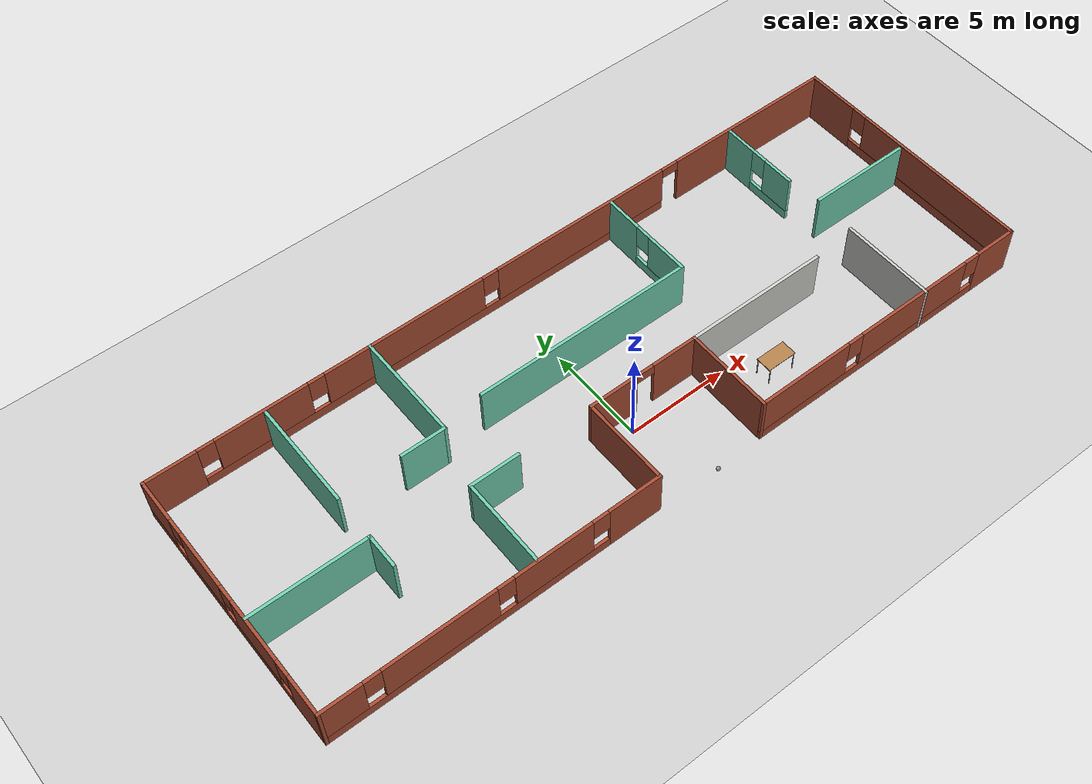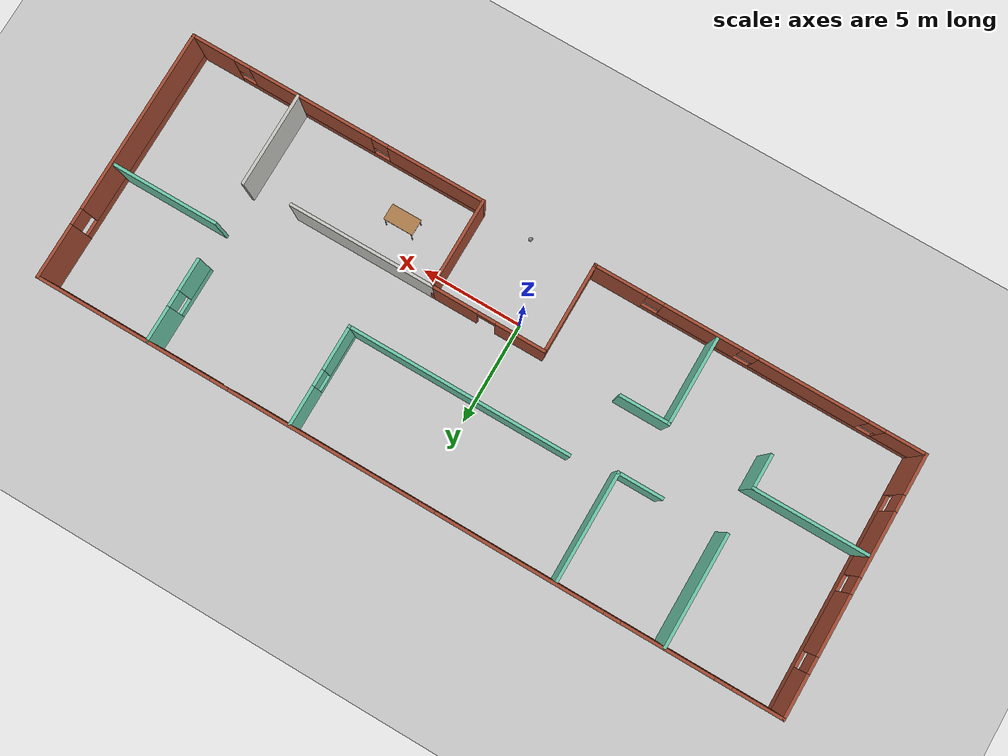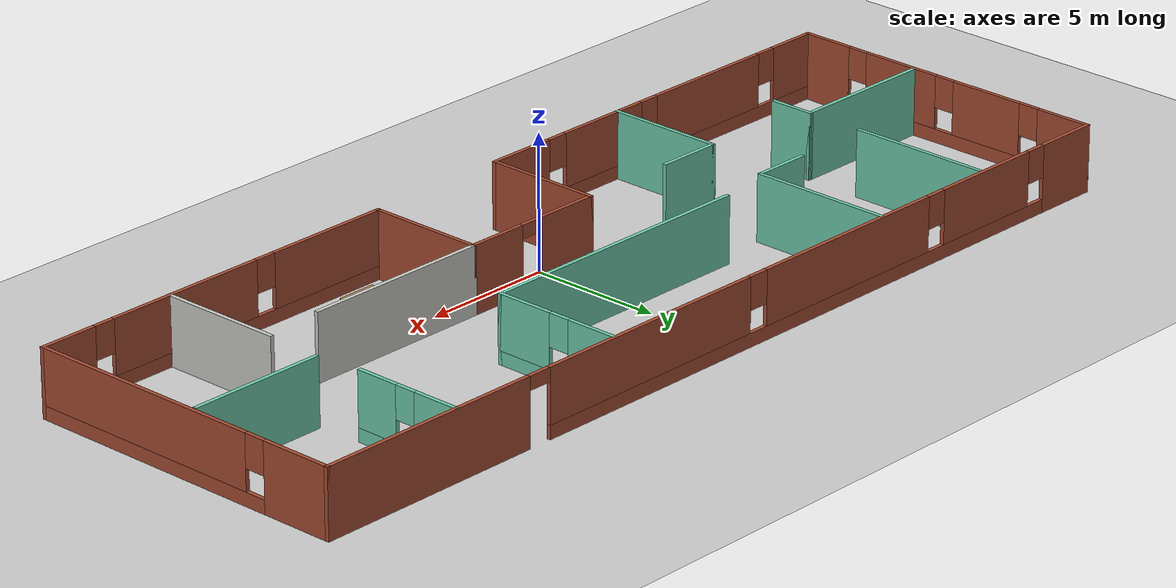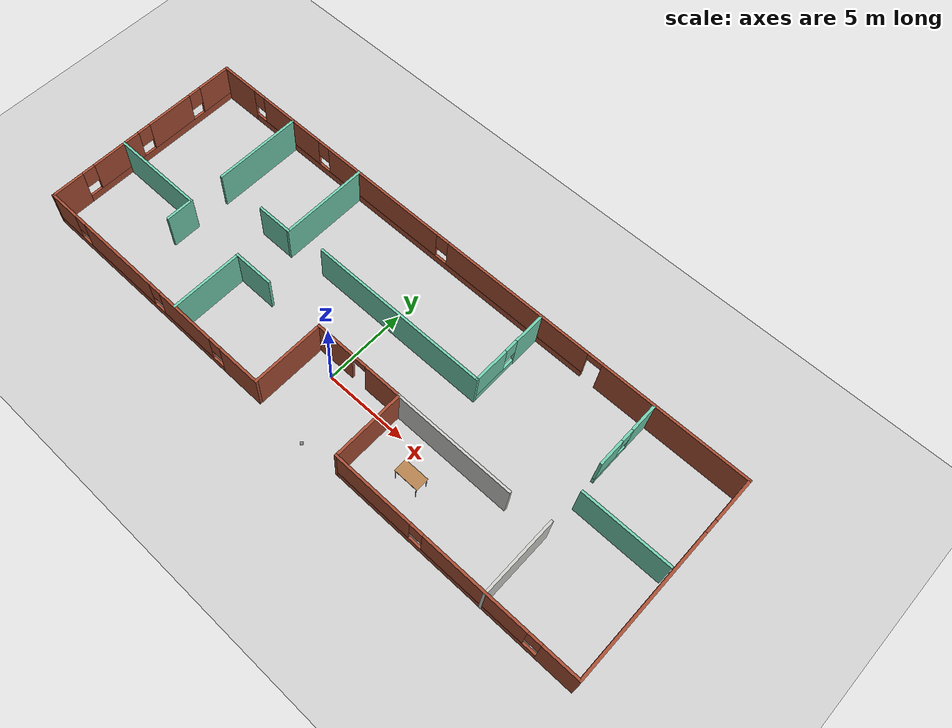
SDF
<sdf version="1.6">
 <world name="default">
  <model name="ground_plane">
   <static>1</static>
   <link name="link">
    <collision name="collision">
     <geometry><plane><normal>0 0 1</normal><size>100 100</size></plane></geometry>
     <surface><friction><ode><mu>100</mu><mu2>50</mu2></ode></friction></surface>
    </collision>
    <visual name="visual">
     <cast_shadows>0</cast_shadows>
     <geometry><plane><normal>0 0 1</normal><size>100 100</size></plane></geometry>
     <material>
      <script><uri>file://media/materials/scripts/gazebo.material</uri><name>Gazebo/Grey</name></script>
     </material>
    </visual>
   </link>
  </model>
  <model name="office_2">
   <pose>0.5777 2.7439 0 0 -0 0</pose>
   <link name="Wall_27">
    <pose>18.275 0.006607 0 0 0 -1.5708</pose>
    <visual name="Wall_27_Visual_0">
     <pose>-4.99868 0 1.25 0 -0 0</pose>
     <geometry><box><size>2.75264 0.15 2.5</size></box></geometry>
     <material>
      <script><uri>file://media/materials/scripts/gazebo.material</uri><name>Gazebo/Bricks</name></script>
      <ambient>1 1 1 1</ambient>
     </material>
     <meta><layer>0</layer></meta>
    </visual>
    <collision name="Wall_27_Collision_0">
     <geometry><box><size>2.75264 0.15 2.5</size></box></geometry>
     <pose>-4.99868 0 1.25 0 -0 0</pose>
    </collision>
    <visual name="Wall_27_Visual_1">
     <pose>1.37632 0 0.25 0 -0 0</pose>
     <geometry><box><size>9.99736 0.15 0.5</size></box></geometry>
     <material>
      <script><uri>file://media/materials/scripts/gazebo.material</uri><name>Gazebo/Bricks</name></script>
      <ambient>1 1 1 1</ambient>
     </material>
     <meta><layer>0</layer></meta>
    </visual>
    <collision name="Wall_27_Collision_1">
     <geometry><box><size>9.99736 0.15 0.5</size></box></geometry>
     <pose>1.37632 0 0.25 0 -0 0</pose>
    </collision>
    <visual name="Wall_27_Visual_2">
     <pose>1.77632 0 1.5 0 -0 0</pose>
     <geometry><box><size>9.19736 0.15 2</size></box></geometry>
     <material>
      <script><uri>file://media/materials/scripts/gazebo.material</uri><name>Gazebo/Bricks</name></script>
      <ambient>1 1 1 1</ambient>
     </material>
     <meta><layer>0</layer></meta>
    </visual>
    <collision name="Wall_27_Collision_2">
     <geometry><box><size>9.19736 0.15 2</size></box></geometry>
     <pose>1.77632 0 1.5 0 -0 0</pose>
    </collision>
    <visual name="Wall_27_Visual_3">
     <pose>-3.22236 0 1.9 0 -0 0</pose>
     <geometry><box><size>0.8 0.15 1.2</size></box></geometry>
     <material>
      <script><uri>file://media/materials/scripts/gazebo.material</uri><name>Gazebo/Bricks</name></script>
      <ambient>1 1 1 1</ambient>
     </material>
     <meta><layer>0</layer></meta>
    </visual>
    <collision name="Wall_27_Collision_3">
     <geometry><box><size>0.8 0.15 1.2</size></box></geometry>
     <pose>-3.22236 0 1.9 0 -0 0</pose>
    </collision>
   </link>
   <link name="Wall_28">
    <pose>10.85 -6.29339 0 0 -0 3.14159</pose>
    <visual name="Wall_28_Visual_0">
     <pose>-6.39219 0 1.25 0 -0 0</pose>
     <geometry><box><size>2.21562 0.15 2.5</size></box></geometry>
     <material>
      <script><uri>file://media/materials/scripts/gazebo.material</uri><name>Gazebo/Bricks</name></script>
      <ambient>1 1 1 1</ambient>
     </material>
     <meta><layer>0</layer></meta>
    </visual>
    <collision name="Wall_28_Collision_0">
     <geometry><box><size>2.21562 0.15 2.5</size></box></geometry>
     <pose>-6.39219 0 1.25 0 -0 0</pose>
    </collision>
    <visual name="Wall_28_Visual_1">
     <pose>1.10781 0 0.25 0 -0 0</pose>
     <geometry><box><size>12.7844 0.15 0.5</size></box></geometry>
     <material>
      <script><uri>file://media/materials/scripts/gazebo.material</uri><name>Gazebo/Bricks</name></script>
      <ambient>1 1 1 1</ambient>
     </material>
     <meta><layer>0</layer></meta>
    </visual>
    <collision name="Wall_28_Collision_1">
     <geometry><box><size>12.7844 0.15 0.5</size></box></geometry>
     <pose>1.10781 0 0.25 0 -0 0</pose>
    </collision>
    <visual name="Wall_28_Visual_2">
     <pose>-1.34653 0 1.5 0 -0 0</pose>
     <geometry><box><size>6.27571 0.15 2</size></box></geometry>
     <material>
      <script><uri>file://media/materials/scripts/gazebo.material</uri><name>Gazebo/Bricks</name></script>
      <ambient>1 1 1 1</ambient>
     </material>
     <meta><layer>0</layer></meta>
    </visual>
    <collision name="Wall_28_Collision_2">
     <geometry><box><size>6.27571 0.15 2</size></box></geometry>
     <pose>-1.34653 0 1.5 0 -0 0</pose>
    </collision>
    <visual name="Wall_28_Visual_3">
     <pose>5.04566 0 1.5 0 -0 0</pose>
     <geometry><box><size>4.90868 0.15 2</size></box></geometry>
     <material>
      <script><uri>file://media/materials/scripts/gazebo.material</uri><name>Gazebo/Bricks</name></script>
      <ambient>1 1 1 1</ambient>
     </material>
     <meta><layer>0</layer></meta>
    </visual>
    <collision name="Wall_28_Collision_3">
     <geometry><box><size>4.90868 0.15 2</size></box></geometry>
     <pose>5.04566 0 1.5 0 -0 0</pose>
    </collision>
    <visual name="Wall_28_Visual_4">
     <pose>-4.88438 0 1.9 0 -0 0</pose>
     <geometry><box><size>0.8 0.15 1.2</size></box></geometry>
     <material>
      <script><uri>file://media/materials/scripts/gazebo.material</uri><name>Gazebo/Bricks</name></script>
      <ambient>1 1 1 1</ambient>
     </material>
     <meta><layer>0</layer></meta>
    </visual>
    <collision name="Wall_28_Collision_4">
     <geometry><box><size>0.8 0.15 1.2</size></box></geometry>
     <pose>-4.88438 0 1.9 0 -0 0</pose>
    </collision>
    <visual name="Wall_28_Visual_5">
     <pose>2.19132 0 1.9 0 -0 0</pose>
     <geometry><box><size>0.8 0.15 1.2</size></box></geometry>
     <material>
      <script><uri>file://media/materials/scripts/gazebo.material</uri><name>Gazebo/Bricks</name></script>
      <ambient>1 1 1 1</ambient>
     </material>
     <meta><layer>0</layer></meta>
    </visual>
    <collision name="Wall_28_Collision_5">
     <geometry><box><size>0.8 0.15 1.2</size></box></geometry>
     <pose>2.19132 0 1.9 0 -0 0</pose>
    </collision>
   </link>
   <link name="Wall_29">
    <collision name="Wall_29_Collision">
     <geometry><box><size>4.5 0.15 2.5</size></box></geometry>
     <pose>0 0 1.25 0 -0 0</pose>
    </collision>
    <visual name="Wall_29_Visual">
     <pose>0 0 1.25 0 -0 0</pose>
     <geometry><box><size>4.5 0.15 2.5</size></box></geometry>
     <material>
      <script><uri>file://media/materials/scripts/gazebo.material</uri><name>Gazebo/Bricks</name></script>
      <ambient>1 1 1 1</ambient>
     </material>
     <meta><layer>0</layer></meta>
    </visual>
    <pose>3.425 -4.11839 0 0 -0 1.5708</pose>
   </link>
   <link name="Wall_30">
    <pose>0.625 -1.94339 0 0 -0 3.14159</pose>
    <visual name="Wall_30_Visual_0">
     <pose>-1.6967 0 1.25 0 -0 0</pose>
     <geometry><box><size>2.3566 0.15 2.5</size></box></geometry>
     <material>
      <script><uri>file://media/materials/scripts/gazebo.material</uri><name>Gazebo/Bricks</name></script>
      <ambient>1 1 1 1</ambient>
     </material>
     <meta><layer>0</layer></meta>
    </visual>
    <collision name="Wall_30_Collision_0">
     <geometry><box><size>2.3566 0.15 2.5</size></box></geometry>
     <pose>-1.6967 0 1.25 0 -0 0</pose>
    </collision>
    <visual name="Wall_30_Visual_1">
     <pose>1.6283 0 1.25 0 -0 0</pose>
     <geometry><box><size>2.4934 0.15 2.5</size></box></geometry>
     <material>
      <script><uri>file://media/materials/scripts/gazebo.material</uri><name>Gazebo/Bricks</name></script>
      <ambient>1 1 1 1</ambient>
     </material>
     <meta><layer>0</layer></meta>
    </visual>
    <collision name="Wall_30_Collision_1">
     <geometry><box><size>2.4934 0.15 2.5</size></box></geometry>
     <pose>1.6283 0 1.25 0 -0 0</pose>
    </collision>
    <visual name="Wall_30_Visual_2">
     <pose>-0.068397 0 2.25 0 -0 0</pose>
     <geometry><box><size>0.9 0.15 0.5</size></box></geometry>
     <material>
      <script><uri>file://media/materials/scripts/gazebo.material</uri><name>Gazebo/Bricks</name></script>
      <ambient>1 1 1 1</ambient>
     </material>
     <meta><layer>0</layer></meta>
    </visual>
    <collision name="Wall_30_Collision_2">
     <geometry><box><size>0.9 0.15 0.5</size></box></geometry>
     <pose>-0.068397 0 2.25 0 -0 0</pose>
    </collision>
   </link>
   <link name="Wall_31">
    <collision name="Wall_31_Collision">
     <geometry><box><size>4.5 0.15 2.5</size></box></geometry>
     <pose>0 0 1.25 0 -0 0</pose>
    </collision>
    <visual name="Wall_31_Visual">
     <pose>0 0 1.25 0 -0 0</pose>
     <geometry><box><size>4.5 0.15 2.5</size></box></geometry>
     <material>
      <script><uri>file://media/materials/scripts/gazebo.material</uri><name>Gazebo/Bricks</name></script>
      <ambient>1 1 1 1</ambient>
     </material>
     <meta><layer>0</layer></meta>
    </visual>
    <pose>-2.175 -4.11839 0 0 0 -1.5708</pose>
   </link>
   <link name="Wall_32">
    <pose>-10.225 -6.29339 0 0 -0 3.14159</pose>
    <visual name="Wall_32_Visual_0">
     <pose>-6.78571 0 1.25 0 -0 0</pose>
     <geometry><box><size>2.67859 0.15 2.5</size></box></geometry>
     <material>
      <script><uri>file://media/materials/scripts/gazebo.material</uri><name>Gazebo/Bricks</name></script>
      <ambient>1 1 1 1</ambient>
     </material>
     <meta><layer>0</layer></meta>
    </visual>
    <collision name="Wall_32_Collision_0">
     <geometry><box><size>2.67859 0.15 2.5</size></box></geometry>
     <pose>-6.78571 0 1.25 0 -0 0</pose>
    </collision>
    <visual name="Wall_32_Visual_1">
     <pose>1.33929 0 0.25 0 -0 0</pose>
     <geometry><box><size>13.5714 0.15 0.5</size></box></geometry>
     <material>
      <script><uri>file://media/materials/scripts/gazebo.material</uri><name>Gazebo/Bricks</name></script>
      <ambient>1 1 1 1</ambient>
     </material>
     <meta><layer>0</layer></meta>
    </visual>
    <collision name="Wall_32_Collision_1">
     <geometry><box><size>13.5714 0.15 0.5</size></box></geometry>
     <pose>1.33929 0 0.25 0 -0 0</pose>
    </collision>
    <visual name="Wall_32_Visual_2">
     <pose>-2.72912 0 1.5 0 -0 0</pose>
     <geometry><box><size>3.83459 0.15 2</size></box></geometry>
     <material>
      <script><uri>file://media/materials/scripts/gazebo.material</uri><name>Gazebo/Bricks</name></script>
      <ambient>1 1 1 1</ambient>
     </material>
     <meta><layer>0</layer></meta>
    </visual>
    <collision name="Wall_32_Collision_2">
     <geometry><box><size>3.83459 0.15 2</size></box></geometry>
     <pose>-2.72912 0 1.5 0 -0 0</pose>
    </collision>
    <visual name="Wall_32_Visual_3">
     <pose>2.64842 0 1.5 0 -0 0</pose>
     <geometry><box><size>5.32049 0.15 2</size></box></geometry>
     <material>
      <script><uri>file://media/materials/scripts/gazebo.material</uri><name>Gazebo/Bricks</name></script>
      <ambient>1 1 1 1</ambient>
     </material>
     <meta><layer>0</layer></meta>
    </visual>
    <collision name="Wall_32_Collision_3">
     <geometry><box><size>5.32049 0.15 2</size></box></geometry>
     <pose>2.64842 0 1.5 0 -0 0</pose>
    </collision>
    <visual name="Wall_32_Visual_4">
     <pose>7.11683 0 1.5 0 -0 0</pose>
     <geometry><box><size>2.01634 0.15 2</size></box></geometry>
     <material>
      <script><uri>file://media/materials/scripts/gazebo.material</uri><name>Gazebo/Bricks</name></script>
      <ambient>1 1 1 1</ambient>
     </material>
     <meta><layer>0</layer></meta>
    </visual>
    <collision name="Wall_32_Collision_4">
     <geometry><box><size>2.01634 0.15 2</size></box></geometry>
     <pose>7.11683 0 1.5 0 -0 0</pose>
    </collision>
    <visual name="Wall_32_Visual_5">
     <pose>-5.04641 0 1.9 0 -0 0</pose>
     <geometry><box><size>0.8 0.15 1.2</size></box></geometry>
     <material>
      <script><uri>file://media/materials/scripts/gazebo.material</uri><name>Gazebo/Bricks</name></script>
      <ambient>1 1 1 1</ambient>
     </material>
     <meta><layer>0</layer></meta>
    </visual>
    <collision name="Wall_32_Collision_5">
     <geometry><box><size>0.8 0.15 1.2</size></box></geometry>
     <pose>-5.04641 0 1.9 0 -0 0</pose>
    </collision>
    <visual name="Wall_32_Visual_6">
     <pose>-0.411825 0 1.9 0 -0 0</pose>
     <geometry><box><size>0.8 0.15 1.2</size></box></geometry>
     <material>
      <script><uri>file://media/materials/scripts/gazebo.material</uri><name>Gazebo/Bricks</name></script>
      <ambient>1 1 1 1</ambient>
     </material>
     <meta><layer>0</layer></meta>
    </visual>
    <collision name="Wall_32_Collision_6">
     <geometry><box><size>0.8 0.15 1.2</size></box></geometry>
     <pose>-0.411825 0 1.9 0 -0 0</pose>
    </collision>
    <visual name="Wall_32_Visual_7">
     <pose>5.70866 0 1.9 0 -0 0</pose>
     <geometry><box><size>0.8 0.15 1.2</size></box></geometry>
     <material>
      <script><uri>file://media/materials/scripts/gazebo.material</uri><name>Gazebo/Bricks</name></script>
      <ambient>1 1 1 1</ambient>
     </material>
     <meta><layer>0</layer></meta>
    </visual>
    <collision name="Wall_32_Collision_7">
     <geometry><box><size>0.8 0.15 1.2</size></box></geometry>
     <pose>5.70866 0 1.9 0 -0 0</pose>
    </collision>
   </link>
   <link name="Wall_33">
    <pose>-18.275 0.006607 0 0 -0 1.5708</pose>
    <visual name="Wall_33_Visual_0">
     <pose>-5.34955 0 1.25 0 -0 0</pose>
     <geometry><box><size>2.0509 0.15 2.5</size></box></geometry>
     <material>
      <script><uri>file://media/materials/scripts/gazebo.material</uri><name>Gazebo/Bricks</name></script>
      <ambient>1 1 1 1</ambient>
     </material>
     <meta><layer>0</layer></meta>
    </visual>
    <collision name="Wall_33_Collision_0">
     <geometry><box><size>2.0509 0.15 2.5</size></box></geometry>
     <pose>-5.34955 0 1.25 0 -0 0</pose>
    </collision>
    <visual name="Wall_33_Visual_1">
     <pose>1.02545 0 0.25 0 -0 0</pose>
     <geometry><box><size>10.6991 0.15 0.5</size></box></geometry>
     <material>
      <script><uri>file://media/materials/scripts/gazebo.material</uri><name>Gazebo/Bricks</name></script>
      <ambient>1 1 1 1</ambient>
     </material>
     <meta><layer>0</layer></meta>
    </visual>
    <collision name="Wall_33_Collision_1">
     <geometry><box><size>10.6991 0.15 0.5</size></box></geometry>
     <pose>1.02545 0 0.25 0 -0 0</pose>
    </collision>
    <visual name="Wall_33_Visual_2">
     <pose>-1.9429 0 1.5 0 -0 0</pose>
     <geometry><box><size>3.1624 0.15 2</size></box></geometry>
     <material>
      <script><uri>file://media/materials/scripts/gazebo.material</uri><name>Gazebo/Bricks</name></script>
      <ambient>1 1 1 1</ambient>
     </material>
     <meta><layer>0</layer></meta>
    </visual>
    <collision name="Wall_33_Collision_2">
     <geometry><box><size>3.1624 0.15 2</size></box></geometry>
     <pose>-1.9429 0 1.5 0 -0 0</pose>
    </collision>
    <visual name="Wall_33_Visual_3">
     <pose>1.91336 0 1.5 0 -0 0</pose>
     <geometry><box><size>2.95012 0.15 2</size></box></geometry>
     <material>
      <script><uri>file://media/materials/scripts/gazebo.material</uri><name>Gazebo/Bricks</name></script>
      <ambient>1 1 1 1</ambient>
     </material>
     <meta><layer>0</layer></meta>
    </visual>
    <collision name="Wall_33_Collision_3">
     <geometry><box><size>2.95012 0.15 2</size></box></geometry>
     <pose>1.91336 0 1.5 0 -0 0</pose>
    </collision>
    <visual name="Wall_33_Visual_4">
     <pose>5.28171 0 1.5 0 -0 0</pose>
     <geometry><box><size>2.18658 0.15 2</size></box></geometry>
     <material>
      <script><uri>file://media/materials/scripts/gazebo.material</uri><name>Gazebo/Bricks</name></script>
      <ambient>1 1 1 1</ambient>
     </material>
     <meta><layer>0</layer></meta>
    </visual>
    <collision name="Wall_33_Collision_4">
     <geometry><box><size>2.18658 0.15 2</size></box></geometry>
     <pose>5.28171 0 1.5 0 -0 0</pose>
    </collision>
    <visual name="Wall_33_Visual_5">
     <pose>-3.9241 0 1.9 0 -0 0</pose>
     <geometry><box><size>0.8 0.15 1.2</size></box></geometry>
     <material>
      <script><uri>file://media/materials/scripts/gazebo.material</uri><name>Gazebo/Bricks</name></script>
      <ambient>1 1 1 1</ambient>
     </material>
     <meta><layer>0</layer></meta>
    </visual>
    <collision name="Wall_33_Collision_5">
     <geometry><box><size>0.8 0.15 1.2</size></box></geometry>
     <pose>-3.9241 0 1.9 0 -0 0</pose>
    </collision>
    <visual name="Wall_33_Visual_6">
     <pose>0.038294 0 1.9 0 -0 0</pose>
     <geometry><box><size>0.8 0.15 1.2</size></box></geometry>
     <material>
      <script><uri>file://media/materials/scripts/gazebo.material</uri><name>Gazebo/Bricks</name></script>
      <ambient>1 1 1 1</ambient>
     </material>
     <meta><layer>0</layer></meta>
    </visual>
    <collision name="Wall_33_Collision_6">
     <geometry><box><size>0.8 0.15 1.2</size></box></geometry>
     <pose>0.038294 0 1.9 0 -0 0</pose>
    </collision>
    <visual name="Wall_33_Visual_7">
     <pose>3.78842 0 1.9 0 -0 0</pose>
     <geometry><box><size>0.8 0.15 1.2</size></box></geometry>
     <material>
      <script><uri>file://media/materials/scripts/gazebo.material</uri><name>Gazebo/Bricks</name></script>
      <ambient>1 1 1 1</ambient>
     </material>
     <meta><layer>0</layer></meta>
    </visual>
    <collision name="Wall_33_Collision_7">
     <geometry><box><size>0.8 0.15 1.2</size></box></geometry>
     <pose>3.78842 0 1.9 0 -0 0</pose>
    </collision>
   </link>
   <link name="Wall_35">
    <pose>0 6.30661 0 0 -0 0</pose>
    <visual name="Wall_35_Visual_0">
     <pose>-17.0942 0 1.25 0 -0 0</pose>
     <geometry><box><size>2.51164 0.15 2.5</size></box></geometry>
     <material>
      <script><uri>file://media/materials/scripts/gazebo.material</uri><name>Gazebo/Bricks</name></script>
      <ambient>1 1 1 1</ambient>
     </material>
     <meta><layer>0</layer></meta>
    </visual>
    <collision name="Wall_35_Collision_0">
     <geometry><box><size>2.51164 0.15 2.5</size></box></geometry>
     <pose>-17.0942 0 1.25 0 -0 0</pose>
    </collision>
    <visual name="Wall_35_Visual_1">
     <pose>13.9356 0 1.25 0 -0 0</pose>
     <geometry><box><size>8.82887 0.15 2.5</size></box></geometry>
     <material>
      <script><uri>file://media/materials/scripts/gazebo.material</uri><name>Gazebo/Bricks</name></script>
      <ambient>1 1 1 1</ambient>
     </material>
     <meta><layer>0</layer></meta>
    </visual>
    <collision name="Wall_35_Collision_1">
     <geometry><box><size>8.82887 0.15 2.5</size></box></geometry>
     <pose>13.9356 0 1.25 0 -0 0</pose>
    </collision>
    <visual name="Wall_35_Visual_2">
     <pose>-3.60861 0 0.25 0 -0 0</pose>
     <geometry><box><size>24.4595 0.15 0.5</size></box></geometry>
     <material>
      <script><uri>file://media/materials/scripts/gazebo.material</uri><name>Gazebo/Bricks</name></script>
      <ambient>1 1 1 1</ambient>
     </material>
     <meta><layer>0</layer></meta>
    </visual>
    <collision name="Wall_35_Collision_2">
     <geometry><box><size>24.4595 0.15 0.5</size></box></geometry>
     <pose>-3.60861 0 0.25 0 -0 0</pose>
    </collision>
    <visual name="Wall_35_Visual_3">
     <pose>-12.8027 0 1.5 0 -0 0</pose>
     <geometry><box><size>4.4714 0.15 2</size></box></geometry>
     <material>
      <script><uri>file://media/materials/scripts/gazebo.material</uri><name>Gazebo/Bricks</name></script>
      <ambient>1 1 1 1</ambient>
     </material>
     <meta><layer>0</layer></meta>
    </visual>
    <collision name="Wall_35_Collision_3">
     <geometry><box><size>4.4714 0.15 2</size></box></geometry>
     <pose>-12.8027 0 1.5 0 -0 0</pose>
    </collision>
    <visual name="Wall_35_Visual_4">
     <pose>-5.68356 0 1.5 0 -0 0</pose>
     <geometry><box><size>8.16679 0.15 2</size></box></geometry>
     <material>
      <script><uri>file://media/materials/scripts/gazebo.material</uri><name>Gazebo/Bricks</name></script>
      <ambient>1 1 1 1</ambient>
     </material>
     <meta><layer>0</layer></meta>
    </visual>
    <collision name="Wall_35_Collision_4">
     <geometry><box><size>8.16679 0.15 2</size></box></geometry>
     <pose>-5.68356 0 1.5 0 -0 0</pose>
    </collision>
    <visual name="Wall_35_Visual_5">
     <pose>3.91048 0 1.5 0 -0 0</pose>
     <geometry><box><size>9.4213 0.15 2</size></box></geometry>
     <material>
      <script><uri>file://media/materials/scripts/gazebo.material</uri><name>Gazebo/Bricks</name></script>
      <ambient>1 1 1 1</ambient>
     </material>
     <meta><layer>0</layer></meta>
    </visual>
    <collision name="Wall_35_Collision_5">
     <geometry><box><size>9.4213 0.15 2</size></box></geometry>
     <pose>3.91048 0 1.5 0 -0 0</pose>
    </collision>
    <visual name="Wall_35_Visual_6">
     <pose>-15.4384 0 1.9 0 -0 0</pose>
     <geometry><box><size>0.8 0.15 1.2</size></box></geometry>
     <material>
      <script><uri>file://media/materials/scripts/gazebo.material</uri><name>Gazebo/Bricks</name></script>
      <ambient>1 1 1 1</ambient>
     </material>
     <meta><layer>0</layer></meta>
    </visual>
    <collision name="Wall_35_Collision_6">
     <geometry><box><size>0.8 0.15 1.2</size></box></geometry>
     <pose>-15.4384 0 1.9 0 -0 0</pose>
    </collision>
    <visual name="Wall_35_Visual_7">
     <pose>-10.167 0 1.9 0 -0 0</pose>
     <geometry><box><size>0.8 0.15 1.2</size></box></geometry>
     <material>
      <script><uri>file://media/materials/scripts/gazebo.material</uri><name>Gazebo/Bricks</name></script>
      <ambient>1 1 1 1</ambient>
     </material>
     <meta><layer>0</layer></meta>
    </visual>
    <collision name="Wall_35_Collision_7">
     <geometry><box><size>0.8 0.15 1.2</size></box></geometry>
     <pose>-10.167 0 1.9 0 -0 0</pose>
    </collision>
    <visual name="Wall_35_Visual_8">
     <pose>-1.20017 0 1.9 0 -0 0</pose>
     <geometry><box><size>0.8 0.15 1.2</size></box></geometry>
     <material>
      <script><uri>file://media/materials/scripts/gazebo.material</uri><name>Gazebo/Bricks</name></script>
      <ambient>1 1 1 1</ambient>
     </material>
     <meta><layer>0</layer></meta>
    </visual>
    <collision name="Wall_35_Collision_8">
     <geometry><box><size>0.8 0.15 1.2</size></box></geometry>
     <pose>-1.20017 0 1.9 0 -0 0</pose>
    </collision>
    <visual name="Wall_35_Visual_9">
     <pose>9.07113 0 2.25 0 -0 0</pose>
     <geometry><box><size>0.9 0.15 0.5</size></box></geometry>
     <material>
      <script><uri>file://media/materials/scripts/gazebo.material</uri><name>Gazebo/Bricks</name></script>
      <ambient>1 1 1 1</ambient>
     </material>
     <meta><layer>0</layer></meta>
    </visual>
    <collision name="Wall_35_Collision_9">
     <geometry><box><size>0.9 0.15 0.5</size></box></geometry>
     <pose>9.07113 0 2.25 0 -0 0</pose>
    </collision>
   </link>
   <link name="Wall_38">
    <collision name="Wall_38_Collision">
     <geometry><box><size>5.75 0.15 2.5</size></box></geometry>
     <pose>0 0 1.25 0 -0 0</pose>
    </collision>
    <visual name="Wall_38_Visual">
     <pose>0 0 1.25 0 -0 0</pose>
     <geometry><box><size>5.75 0.15 2.5</size></box></geometry>
     <material>
      <script><uri>file://media/materials/scripts/gazebo.material</uri><name>Gazebo/Grey</name></script>
      <ambient>0.435294 0.796078 0.67451 1</ambient>
     </material>
     <meta><layer>0</layer></meta>
    </visual>
    <pose>-15.4596 -1.35361 0 0 -0 0</pose>
   </link>
   <link name="Wall_39">
    <collision name="Wall_39_Collision">
     <geometry><box><size>1.75 0.15 2.5</size></box></geometry>
     <pose>0 0 1.25 0 -0 0</pose>
    </collision>
    <visual name="Wall_39_Visual">
     <pose>0 0 1.25 0 -0 0</pose>
     <geometry><box><size>1.75 0.15 2.5</size></box></geometry>
     <material>
      <script><uri>file://media/materials/scripts/gazebo.material</uri><name>Gazebo/Grey</name></script>
      <ambient>0.435294 0.796078 0.67451 1</ambient>
     </material>
     <meta><layer>0</layer></meta>
    </visual>
    <pose>-12.6596 -2.15361 0 0 0 -1.5708</pose>
   </link>
   <link name="Wall_41">
    <collision name="Wall_41_Collision">
     <geometry><box><size>5.5 0.15 2.5</size></box></geometry>
     <pose>0 0 1.25 0 -0 0</pose>
    </collision>
    <visual name="Wall_41_Visual">
     <pose>0 0 1.25 0 -0 0</pose>
     <geometry><box><size>5.5 0.15 2.5</size></box></geometry>
     <material>
      <script><uri>file://media/materials/scripts/gazebo.material</uri><name>Gazebo/Grey</name></script>
      <ambient>0.435294 0.796078 0.67451 1</ambient>
     </material>
     <meta><layer>0</layer></meta>
    </visual>
    <pose>-12.6605 3.57008 0 0 0 -1.5708</pose>
   </link>
   <link name="Wall_43">
    <collision name="Wall_43_Collision">
     <geometry><box><size>2.25 0.15 2.5</size></box></geometry>
     <pose>0 0 1.25 0 -0 0</pose>
    </collision>
    <visual name="Wall_43_Visual">
     <pose>0 0 1.25 0 -0 0</pose>
     <geometry><box><size>2.25 0.15 2.5</size></box></geometry>
     <material>
      <script><uri>file://media/materials/scripts/gazebo.material</uri><name>Gazebo/Grey</name></script>
      <ambient>0.435294 0.796078 0.67451 1</ambient>
     </material>
     <meta><layer>0</layer></meta>
    </visual>
    <pose>-8.50339 0.953682 0 0 -0 0</pose>
   </link>
   <link name="Wall_44">
    <collision name="Wall_44_Collision">
     <geometry><box><size>5.5 0.15 2.5</size></box></geometry>
     <pose>0 0 1.25 0 -0 0</pose>
    </collision>
    <visual name="Wall_44_Visual">
     <pose>0 0 1.25 0 -0 0</pose>
     <geometry><box><size>5.5 0.15 2.5</size></box></geometry>
     <material>
      <script><uri>file://media/materials/scripts/gazebo.material</uri><name>Gazebo/Grey</name></script>
      <ambient>0.435294 0.796078 0.67451 1</ambient>
     </material>
     <meta><layer>0</layer></meta>
    </visual>
    <pose>-7.45339 3.62868 0 0 -0 1.5708</pose>
   </link>
   <link name="Wall_46">
    <collision name="Wall_46_Collision">
     <geometry><box><size>4.75 0.15 2.5</size></box></geometry>
     <pose>0 0 1.25 0 -0 0</pose>
    </collision>
    <visual name="Wall_46_Visual">
     <pose>0 0 1.25 0 -0 0</pose>
     <geometry><box><size>4.75 0.15 2.5</size></box></geometry>
     <material>
      <script><uri>file://media/materials/scripts/gazebo.material</uri><name>Gazebo/CeilingTiled</name></script>
      <ambient>0.435294 0.796078 0.67451 1</ambient>
     </material>
     <meta><layer>0</layer></meta>
    </visual>
    <pose>12.8428 -4.00661 0 0 -0 1.5708</pose>
   </link>
   <link name="Wall_48">
    <collision name="Wall_48_Collision">
     <geometry><box><size>5.25 0.15 2.5</size></box></geometry>
     <pose>0 0 1.25 0 -0 0</pose>
    </collision>
    <visual name="Wall_48_Visual">
     <pose>0 0 1.25 0 -0 0</pose>
     <geometry><box><size>5.25 0.15 2.5</size></box></geometry>
     <material>
      <script><uri>file://media/materials/scripts/gazebo.material</uri><name>Gazebo/Grey</name></script>
      <ambient>0.435294 0.796078 0.67451 1</ambient>
     </material>
     <meta><layer>0</layer></meta>
    </visual>
    <pose>15.5226 0.430695 0 0 -0 3.14159</pose>
   </link>
   <link name="Wall_50">
    <pose>12.7197 4.22584 0 0 0 -1.5708</pose>
    <visual name="Wall_50_Visual_0">
     <pose>-1.22398 0 1.25 0 -0 0</pose>
     <geometry><box><size>1.80203 0.15 2.5</size></box></geometry>
     <material>
      <script><uri>file://media/materials/scripts/gazebo.material</uri><name>Gazebo/Grey</name></script>
      <ambient>0.435294 0.796078 0.67451 1</ambient>
     </material>
     <meta><layer>0</layer></meta>
    </visual>
    <collision name="Wall_50_Collision_0">
     <geometry><box><size>1.80203 0.15 2.5</size></box></geometry>
     <pose>-1.22398 0 1.25 0 -0 0</pose>
    </collision>
    <visual name="Wall_50_Visual_1">
     <pose>0.901016 0 0.25 0 -0 0</pose>
     <geometry><box><size>2.44797 0.15 0.5</size></box></geometry>
     <material>
      <script><uri>file://media/materials/scripts/gazebo.material</uri><name>Gazebo/Grey</name></script>
      <ambient>0.435294 0.796078 0.67451 1</ambient>
     </material>
     <meta><layer>0</layer></meta>
    </visual>
    <collision name="Wall_50_Collision_1">
     <geometry><box><size>2.44797 0.15 0.5</size></box></geometry>
     <pose>0.901016 0 0.25 0 -0 0</pose>
    </collision>
    <visual name="Wall_50_Visual_2">
     <pose>1.30102 0 1.5 0 -0 0</pose>
     <geometry><box><size>1.64797 0.15 2</size></box></geometry>
     <material>
      <script><uri>file://media/materials/scripts/gazebo.material</uri><name>Gazebo/Grey</name></script>
      <ambient>0.435294 0.796078 0.67451 1</ambient>
     </material>
     <meta><layer>0</layer></meta>
    </visual>
    <collision name="Wall_50_Collision_2">
     <geometry><box><size>1.64797 0.15 2</size></box></geometry>
     <pose>1.30102 0 1.5 0 -0 0</pose>
    </collision>
    <visual name="Wall_50_Visual_3">
     <pose>0.077033 0 1.9 0 -0 0</pose>
     <geometry><box><size>0.8 0.15 1.2</size></box></geometry>
     <material>
      <script><uri>file://media/materials/scripts/gazebo.material</uri><name>Gazebo/Grey</name></script>
      <ambient>0.435294 0.796078 0.67451 1</ambient>
     </material>
     <meta><layer>0</layer></meta>
    </visual>
    <collision name="Wall_50_Collision_3">
     <geometry><box><size>0.8 0.15 1.2</size></box></geometry>
     <pose>0.077033 0 1.9 0 -0 0</pose>
    </collision>
   </link>
   <link name="Wall_53">
    <collision name="Wall_53_Collision">
     <geometry><box><size>7.25 0.15 2.5</size></box></geometry>
     <pose>0 0 1.25 0 -0 0</pose>
    </collision>
    <visual name="Wall_53_Visual">
     <pose>0 0 1.25 0 -0 0</pose>
     <geometry><box><size>7.25 0.15 2.5</size></box></geometry>
     <material>
      <script><uri>file://media/materials/scripts/gazebo.material</uri><name>Gazebo/CeilingTiled</name></script>
      <ambient>0.435294 0.796078 0.67451 1</ambient>
     </material>
     <meta><layer>0</layer></meta>
    </visual>
    <pose>6.975 -1.94339 0 0 -0 0</pose>
   </link>
   <link name="Wall_55">
    <collision name="Wall_55_Collision">
     <geometry><box><size>2.5 0.15 2.5</size></box></geometry>
     <pose>0 0 1.25 0 -0 0</pose>
    </collision>
    <visual name="Wall_55_Visual">
     <pose>0 0 1.25 0 -0 0</pose>
     <geometry><box><size>2.5 0.15 2.5</size></box></geometry>
     <material>
      <script><uri>file://media/materials/scripts/gazebo.material</uri><name>Gazebo/Grey</name></script>
      <ambient>0.435294 0.796078 0.67451 1</ambient>
     </material>
     <meta><layer>0</layer></meta>
    </visual>
    <pose>-7.09824 -1.93813 0 0 -0 3.14159</pose>
   </link>
   <link name="Wall_56">
    <collision name="Wall_56_Collision">
     <geometry><box><size>4.5 0.15 2.5</size></box></geometry>
     <pose>0 0 1.25 0 -0 0</pose>
    </collision>
    <visual name="Wall_56_Visual">
     <pose>0 0 1.25 0 -0 0</pose>
     <geometry><box><size>4.5 0.15 2.5</size></box></geometry>
     <material>
      <script><uri>file://media/materials/scripts/gazebo.material</uri><name>Gazebo/Grey</name></script>
      <ambient>0.435294 0.796078 0.67451 1</ambient>
     </material>
     <meta><layer>0</layer></meta>
    </visual>
    <pose>-8.27324 -4.11313 0 0 0 -1.5708</pose>
   </link>
   <link name="Wall_58">
    <pose>5.56938 3.78676 0 0 0 -1.5708</pose>
    <visual name="Wall_58_Visual_0">
     <pose>-1.52489 0 1.25 0 -0 0</pose>
     <geometry><box><size>1.95022 0.15 2.5</size></box></geometry>
     <material>
      <script><uri>file://media/materials/scripts/gazebo.material</uri><name>Gazebo/Grey</name></script>
      <ambient>0.435294 0.796078 0.67451 1</ambient>
     </material>
     <meta><layer>0</layer></meta>
    </visual>
    <collision name="Wall_58_Collision_0">
     <geometry><box><size>1.95022 0.15 2.5</size></box></geometry>
     <pose>-1.52489 0 1.25 0 -0 0</pose>
    </collision>
    <visual name="Wall_58_Visual_1">
     <pose>0.975108 0 0.25 0 -0 0</pose>
     <geometry><box><size>3.04978 0.15 0.5</size></box></geometry>
     <material>
      <script><uri>file://media/materials/scripts/gazebo.material</uri><name>Gazebo/Grey</name></script>
      <ambient>0.435294 0.796078 0.67451 1</ambient>
     </material>
     <meta><layer>0</layer></meta>
    </visual>
    <collision name="Wall_58_Collision_1">
     <geometry><box><size>3.04978 0.15 0.5</size></box></geometry>
     <pose>0.975108 0 0.25 0 -0 0</pose>
    </collision>
    <visual name="Wall_58_Visual_2">
     <pose>1.37511 0 1.5 0 -0 0</pose>
     <geometry><box><size>2.24978 0.15 2</size></box></geometry>
     <material>
      <script><uri>file://media/materials/scripts/gazebo.material</uri><name>Gazebo/Grey</name></script>
      <ambient>0.435294 0.796078 0.67451 1</ambient>
     </material>
     <meta><layer>0</layer></meta>
    </visual>
    <collision name="Wall_58_Collision_2">
     <geometry><box><size>2.24978 0.15 2</size></box></geometry>
     <pose>1.37511 0 1.5 0 -0 0</pose>
    </collision>
    <visual name="Wall_58_Visual_3">
     <pose>-0.149784 0 1.9 0 -0 0</pose>
     <geometry><box><size>0.8 0.15 1.2</size></box></geometry>
     <material>
      <script><uri>file://media/materials/scripts/gazebo.material</uri><name>Gazebo/Grey</name></script>
      <ambient>0.435294 0.796078 0.67451 1</ambient>
     </material>
     <meta><layer>0</layer></meta>
    </visual>
    <collision name="Wall_58_Collision_3">
     <geometry><box><size>0.8 0.15 1.2</size></box></geometry>
     <pose>-0.149784 0 1.9 0 -0 0</pose>
    </collision>
   </link>
   <link name="Wall_59">
    <collision name="Wall_59_Collision">
     <geometry><box><size>11 0.15 2.5</size></box></geometry>
     <pose>0 0 1.25 0 -0 0</pose>
    </collision>
    <visual name="Wall_59_Visual">
     <pose>0 0 1.25 0 -0 0</pose>
     <geometry><box><size>11 0.15 2.5</size></box></geometry>
     <material>
      <script><uri>file://media/materials/scripts/gazebo.material</uri><name>Gazebo/Grey</name></script>
      <ambient>0.435294 0.796078 0.67451 1</ambient>
     </material>
     <meta><layer>0</layer></meta>
    </visual>
    <pose>0.14438 1.36176 0 0 -0 3.14159</pose>
   </link>
   <static>1</static>
  </model>
  <model name="table_1">
   <static>1</static>
   <link name="link">
    <collision name="surface">
     <pose>0 0 1 0 -0 0</pose>
     <geometry><box><size>1.5 0.8 0.03</size></box></geometry>
     <surface><friction><ode><mu>0.6</mu><mu2>0.6</mu2></ode></friction></surface>
    </collision>
    <visual name="visual1">
     <pose>0 0 1 0 -0 0</pose>
     <geometry><box><size>1.5 0.8 0.03</size></box></geometry>
     <material>
      <script><uri>file://media/materials/scripts/gazebo.material</uri><name>Gazebo/Wood</name></script>
     </material>
    </visual>
    <collision name="front_left_leg">
     <pose>0.68 0.38 0.5 0 -0 0</pose>
     <geometry><cylinder><radius>0.02</radius><length>1</length></cylinder></geometry>
    </collision>
    <visual name="front_left_leg">
     <pose>0.68 0.38 0.5 0 -0 0</pose>
     <geometry><cylinder><radius>0.02</radius><length>1</length></cylinder></geometry>
     <material>
      <script><uri>file://media/materials/scripts/gazebo.material</uri><name>Gazebo/Grey</name></script>
     </material>
    </visual>
    <collision name="front_right_leg">
     <pose>0.68 -0.38 0.5 0 -0 0</pose>
     <geometry><cylinder><radius>0.02</radius><length>1</length></cylinder></geometry>
    </collision>
    <visual name="front_right_leg">
     <pose>0.68 -0.38 0.5 0 -0 0</pose>
     <geometry><cylinder><radius>0.02</radius><length>1</length></cylinder></geometry>
     <material>
      <script><uri>file://media/materials/scripts/gazebo.material</uri><name>Gazebo/Grey</name></script>
     </material>
    </visual>
    <collision name="back_right_leg">
     <pose>-0.68 -0.38 0.5 0 -0 0</pose>
     <geometry><cylinder><radius>0.02</radius><length>1</length></cylinder></geometry>
    </collision>
    <visual name="back_right_leg">
     <pose>-0.68 -0.38 0.5 0 -0 0</pose>
     <geometry><cylinder><radius>0.02</radius><length>1</length></cylinder></geometry>
     <material>
      <script><uri>file://media/materials/scripts/gazebo.material</uri><name>Gazebo/Grey</name></script>
     </material>
    </visual>
    <collision name="back_left_leg">
     <pose>-0.68 0.38 0.5 0 -0 0</pose>
     <geometry><cylinder><radius>0.02</radius><length>1</length></cylinder></geometry>
    </collision>
    <visual name="back_left_leg">
     <pose>-0.68 0.38 0.5 0 -0 0</pose>
     <geometry><cylinder><radius>0.02</radius><length>1</length></cylinder></geometry>
     <material>
      <script><uri>file://media/materials/scripts/gazebo.material</uri><name>Gazebo/Grey</name></script>
     </material>
    </visual>
   </link>
   <pose>6.88018 -1.34899 0 0 -0 0</pose>
  </model>
  <model name="my_ball">
   <link name="link_0">
    <inertial>
     <mass>1</mass>
     <inertia><ixx>0.1</ixx><ixy>0</ixy><ixz>0</ixz><iyy>0.1</iyy><iyz>0</iyz><izz>0.1</izz></inertia>
    </inertial>
    <visual name="visual">
     <geometry><sphere><radius>0.1</radius></sphere></geometry>
     <material>
      <lighting>1</lighting>
      <script><uri>file://media/materials/scripts/gazebo.material</uri><name>Gazebo/Grey</name></script>
      <shader type="pixel"><normal_map>__default__</normal_map></shader>
      <ambient>1 1 1 1</ambient>
      <diffuse>1 1 1 1</diffuse>
      <specular>1 1 1 1</specular>
      <emissive>1 1 1 1</emissive>
     </material>
    </visual>
    <collision name="collision">
     <geometry><sphere><radius>0.1</radius></sphere></geometry>
     <surface>
      <friction>
       <ode><mu>1</mu><mu2>1</mu2><fdir1>0 0 0</fdir1><slip1>0</slip1><slip2>0</slip2></ode>
       <torsional>
        <coefficient>1</coefficient>
        <patch_radius>0</patch_radius>
        <surface_radius>0</surface_radius>
        <use_patch_radius>1</use_patch_radius>
        <ode><slip>0</slip></ode>
       </torsional>
      </friction>
      <bounce><restitution_coefficient>0</restitution_coefficient><threshold>1e+06</threshold></bounce>
      <contact>
       <collide_without_contact>0</collide_without_contact>
       <collide_without_contact_bitmask>1</collide_without_contact_bitmask>
       <collide_bitmask>1</collide_bitmask>
       <ode>
        <soft_cfm>0</soft_cfm>
        <soft_erp>0.2</soft_erp>
        <kp>1e+13</kp>
        <kd>1</kd>
        <max_vel>0.01</max_vel>
        <min_depth>0</min_depth>
       </ode>
       <bullet>
        <split_impulse>1</split_impulse>
        <split_impulse_penetration_threshold>-0.01</split_impulse_penetration_threshold>
        <soft_cfm>0</soft_cfm>
        <soft_erp>0.2</soft_erp>
        <kp>1e+13</kp>
        <kd>1</kd>
       </bullet>
      </contact>
     </surface>
    </collision>
   </link>
   <static>0</static>
   <pose>1.57059 -3.67907 0.1 0 -0 0</pose>
  </model>
  <model name="building"><pose>0.686109 0.384517 0 0 -0 0</pose><static>1</static></model>
 </world>
</sdf>
